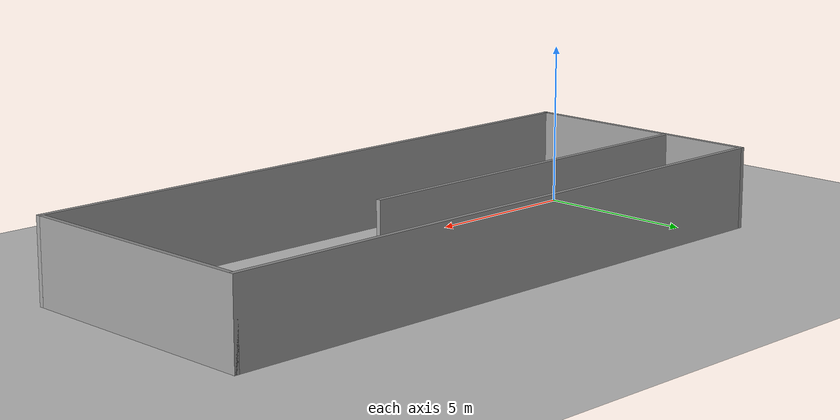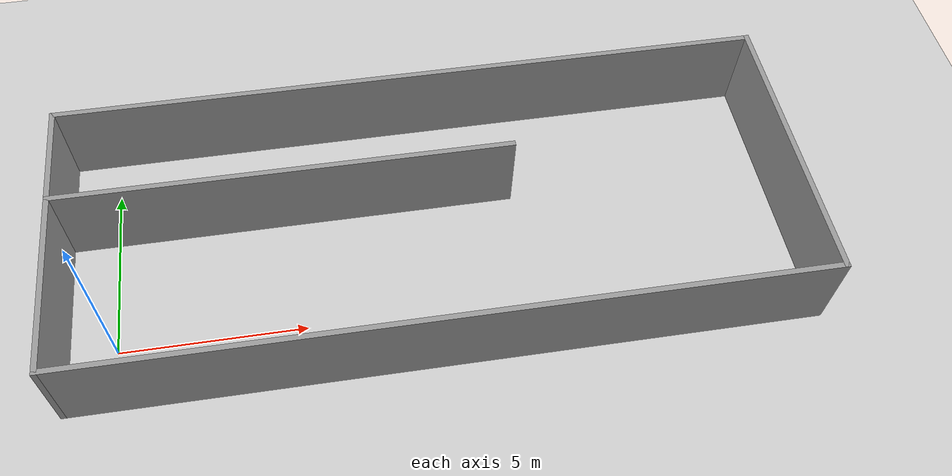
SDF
<sdf version="1.6">
 <world name="default">
  <light name="sun" type="directional">
   <pose>0 0 10 0 -0 0</pose>
   <diffuse>0.8 0.8 0.8 1</diffuse>
   <specular>0.1 0.1 0.1 1</specular>
   <attenuation>
    <range>1000</range>
    <constant>0.9</constant>
    <linear>0.01</linear>
    <quadratic>0.001</quadratic>
   </attenuation>
   <direction>-0.5 0.5 -1</direction>
  </light>
  <model name="ground_plane">
   <static>1</static>
   <link name="link">
    <collision name="collision">
     <geometry><plane><normal>0 0 1</normal><size>100 100</size></plane></geometry>
     <surface><friction><ode><mu>100</mu><mu2>50</mu2></ode></friction></surface>
    </collision>
    <visual name="visual">
     <cast_shadows>0</cast_shadows>
     <geometry><plane><normal>0 0 1</normal><size>100 100</size></plane></geometry>
     <material>
      <script><uri>file://media/materials/scripts/gazebo.material</uri><name>Gazebo/Grey</name></script>
     </material>
    </visual>
   </link>
  </model>
  <gravity>0 0 -9.8</gravity>
  <magnetic_field>6e-06 2.3e-05 -4.2e-05</magnetic_field>
  <atmosphere type="adiabatic"/>
  <physics name="default_physics" default="0" type="ode">
   <max_step_size>0.001</max_step_size>
   <real_time_factor>1</real_time_factor>
   <real_time_update_rate>1000</real_time_update_rate>
  </physics>
  <scene><ambient>0.4 0.4 0.4 1</ambient><background>0.7 0.7 0.7 1</background><shadows>1</shadows></scene>
  <spherical_coordinates>
   <surface_model>EARTH_WGS84</surface_model>
   <latitude_deg>0</latitude_deg>
   <longitude_deg>0</longitude_deg>
   <elevation>0</elevation>
   <heading_deg>0</heading_deg>
  </spherical_coordinates>
  <model name="Corridor">
   <pose>8.5994 2.35566 0 0 -0 0</pose>
   <link name="Wall_14">
    <collision name="Wall_14_Collision">
     <geometry><box><size>20 0.15 2.5</size></box></geometry>
     <pose>0 0 1.25 0 -0 0</pose>
    </collision>
    <visual name="Wall_14_Visual">
     <pose>0 0 1.25 0 -0 0</pose>
     <geometry><box><size>20 0.15 2.5</size></box></geometry>
     <material>
      <script><uri>file://media/materials/scripts/gazebo.material</uri><name>Gazebo/Grey</name></script>
      <ambient>1 1 1 1</ambient>
     </material>
    </visual>
    <pose>0 3.925 0 0 -0 0</pose>
   </link>
   <link name="Wall_15">
    <collision name="Wall_15_Collision">
     <geometry><box><size>8 0.15 2.5</size></box></geometry>
     <pose>0 0 1.25 0 -0 0</pose>
    </collision>
    <visual name="Wall_15_Visual">
     <pose>0 0 1.25 0 -0 0</pose>
     <geometry><box><size>8 0.15 2.5</size></box></geometry>
     <material>
      <script><uri>file://media/materials/scripts/gazebo.material</uri><name>Gazebo/Grey</name></script>
      <ambient>1 1 1 1</ambient>
     </material>
    </visual>
    <pose>9.925 0 0 0 0 -1.5708</pose>
   </link>
   <link name="Wall_16">
    <collision name="Wall_16_Collision">
     <geometry><box><size>20 0.15 2.5</size></box></geometry>
     <pose>0 0 1.25 0 -0 0</pose>
    </collision>
    <visual name="Wall_16_Visual">
     <pose>0 0 1.25 0 -0 0</pose>
     <geometry><box><size>20 0.15 2.5</size></box></geometry>
     <material>
      <script><uri>file://media/materials/scripts/gazebo.material</uri><name>Gazebo/Grey</name></script>
      <ambient>1 1 1 1</ambient>
     </material>
    </visual>
    <pose>0 -3.925 0 0 -0 3.14159</pose>
   </link>
   <link name="Wall_17">
    <collision name="Wall_17_Collision">
     <geometry><box><size>8 0.15 2.5</size></box></geometry>
     <pose>0 0 1.25 0 -0 0</pose>
    </collision>
    <visual name="Wall_17_Visual">
     <pose>0 0 1.25 0 -0 0</pose>
     <geometry><box><size>8 0.15 2.5</size></box></geometry>
     <material>
      <script><uri>file://media/materials/scripts/gazebo.material</uri><name>Gazebo/Grey</name></script>
      <ambient>1 1 1 1</ambient>
     </material>
    </visual>
    <pose>-9.925 0 0 0 -0 1.5708</pose>
   </link>
   <link name="Wall_19">
    <collision name="Wall_19_Collision">
     <geometry><box><size>12.5 0.15 2.5</size></box></geometry>
     <pose>0 0 1.25 0 -0 0</pose>
    </collision>
    <visual name="Wall_19_Visual">
     <pose>0 0 1.25 0 -0 0</pose>
     <geometry><box><size>12.5 0.15 2.5</size></box></geometry>
     <material>
      <script><uri>file://media/materials/scripts/gazebo.material</uri><name>Gazebo/Grey</name></script>
      <ambient>1 1 1 1</ambient>
     </material>
    </visual>
    <pose>-3.74367 1.07902 0 0 -0 0</pose>
   </link>
   <static>1</static>
  </model>
 </world>
</sdf>
